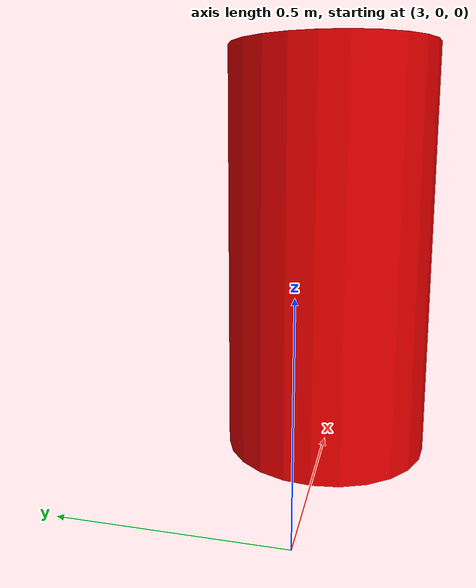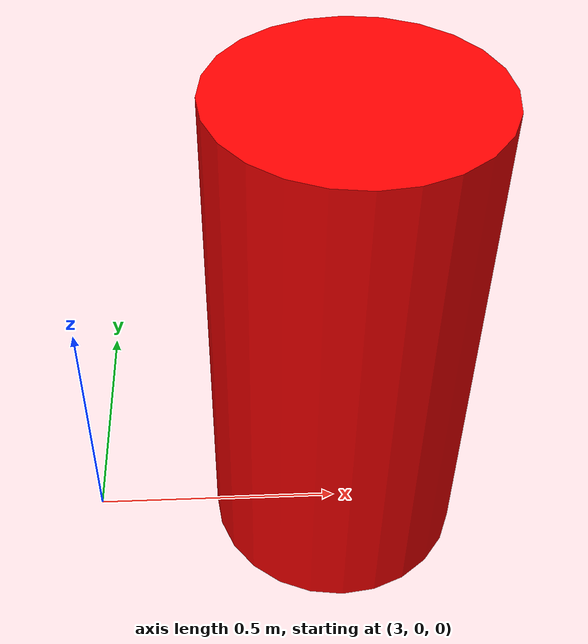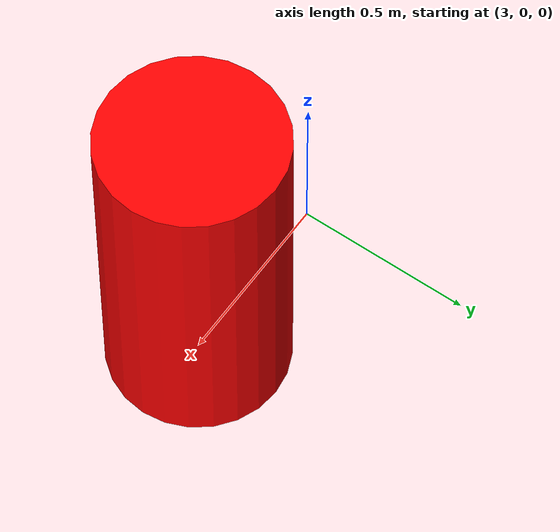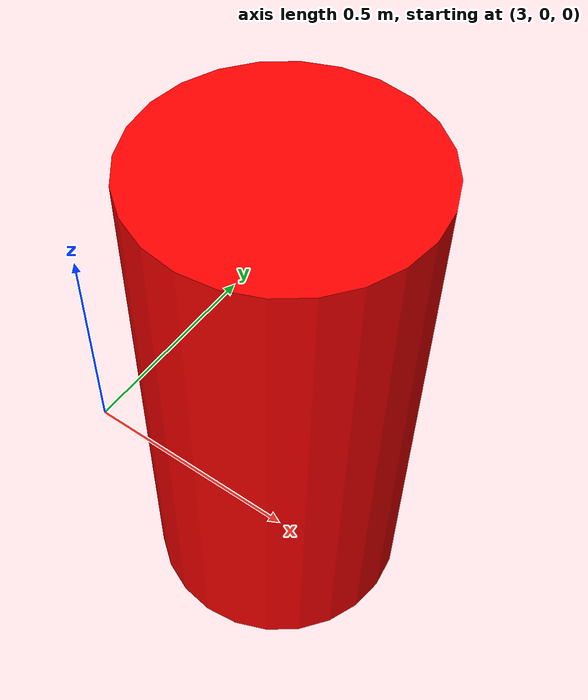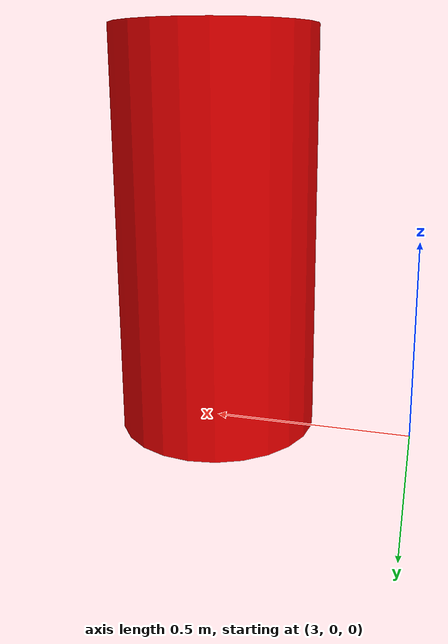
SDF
<sdf version='1.12'>
    <model name='goal_visual'>
        <pose>3.5 0.0 0.5 0.0 0.0 0.0</pose>
        <link name='cylinder_link'>
        <inertial>
            <inertia>
            <ixx>10.674999999999999</ixx>
            <ixy>0</ixy>
            <ixz>0</ixz>
            <iyy>10.674999999999999</iyy>
            <iyz>0</iyz>
            <izz>1.3499999999999999</izz>
            </inertia>
            <mass>120</mass>
            <pose>0 0 0 0 0 0</pose>
        </inertial>
        <collision name='cylinder_collision'>
            <geometry>
            <cylinder>
                <radius>0.001</radius>
                <length>1.0</length>
            </cylinder>
            </geometry>
            <surface>
            <friction>
                <ode/>
            </friction>
            <bounce/>
            <contact/>
            </surface>
        </collision>
        <visual name='cylinder_visual'>
            <geometry>
            <cylinder>
                <radius>0.25</radius>
                <length>1.0</length>
            </cylinder>
            </geometry>
            <material>
            <ambient>1 0 0 1</ambient>
            <diffuse>1 0 0 1</diffuse>
            <specular>1 0 0 1</specular>
            </material>
        </visual>
        <pose>0 0 0 0 0 0</pose>
        <enable_wind>false</enable_wind>
        </link>
        <static>false</static>
        <self_collide>false</self_collide>
    </model>
</sdf>
